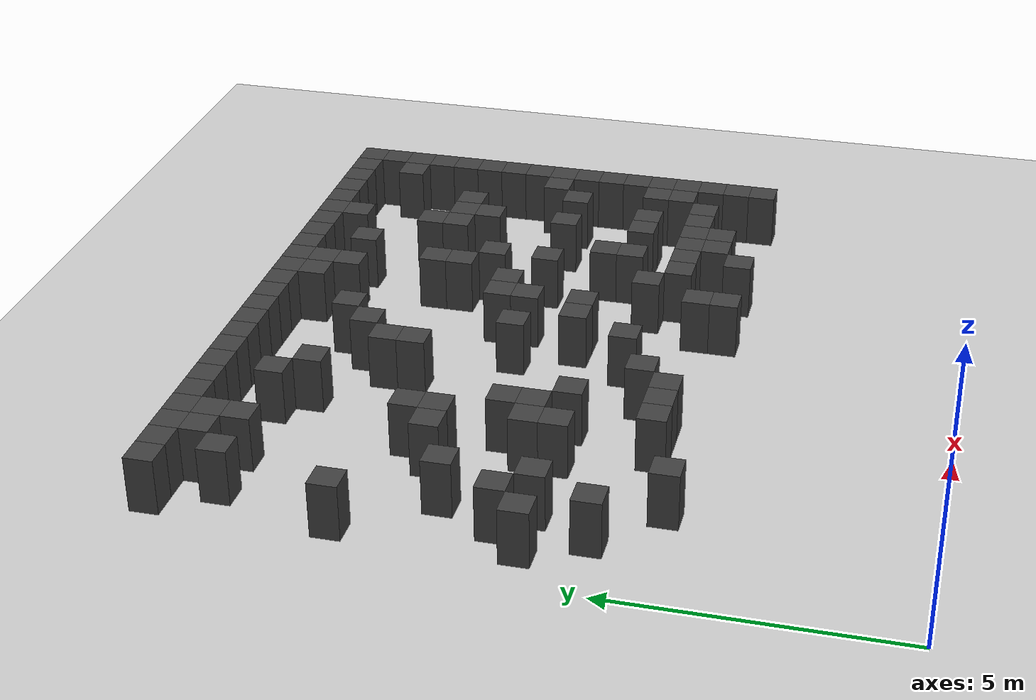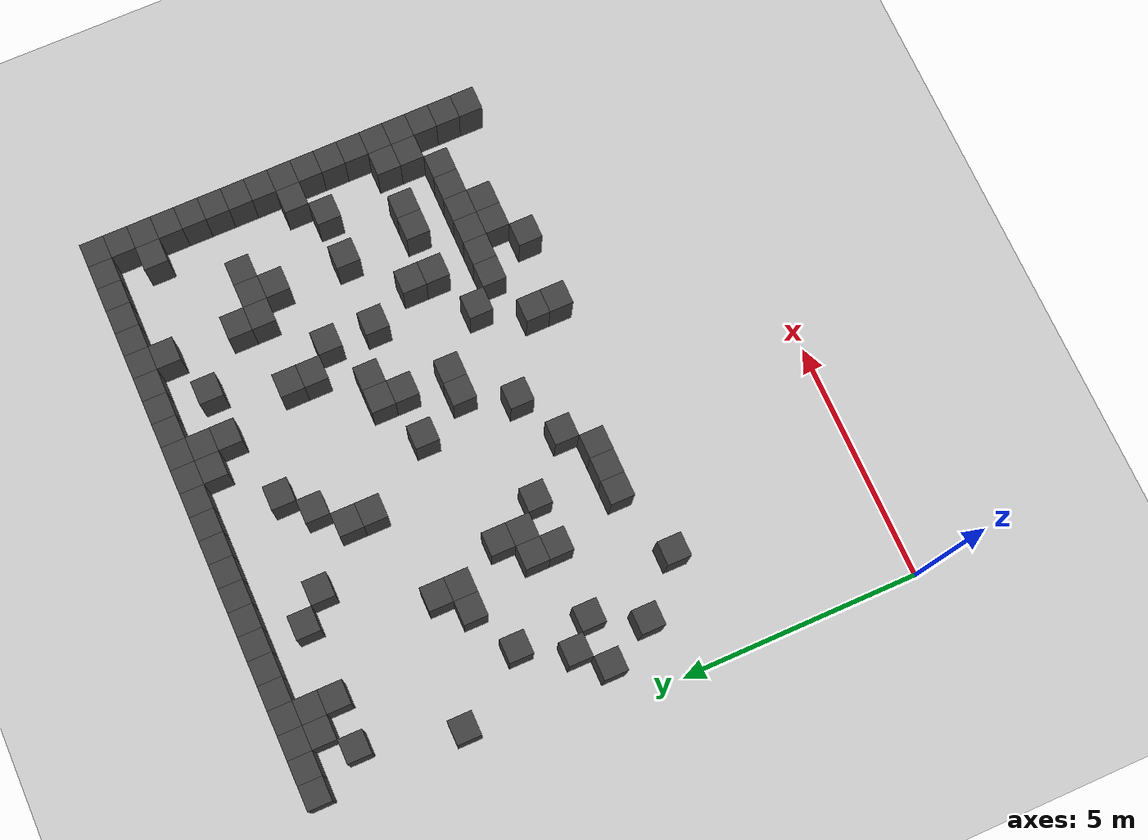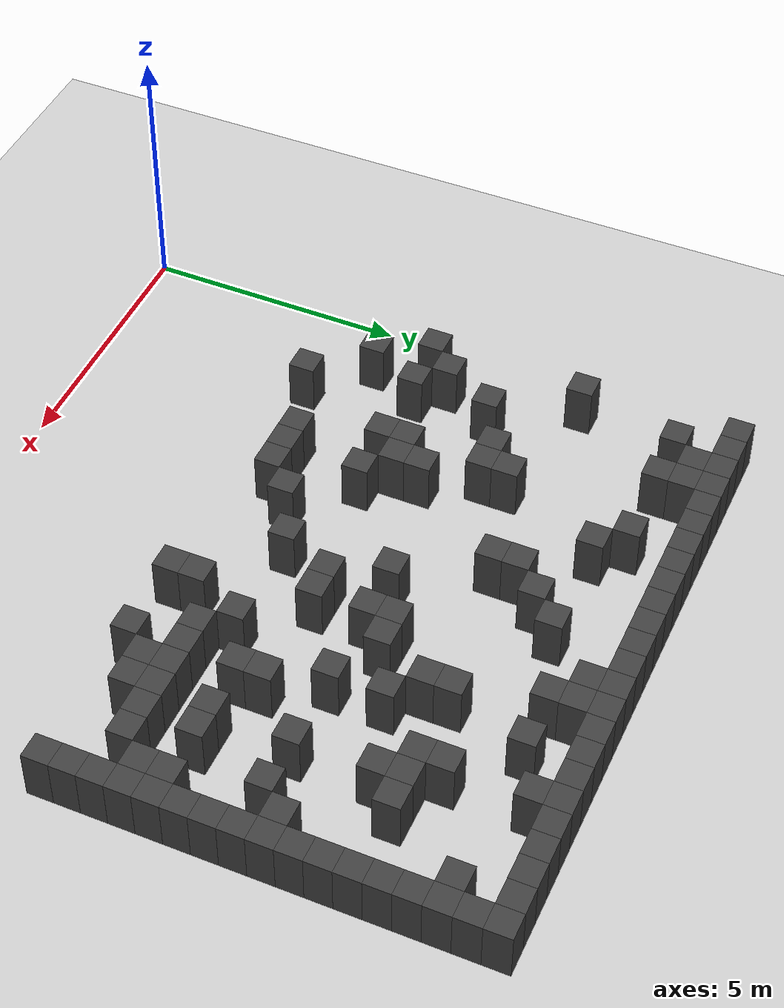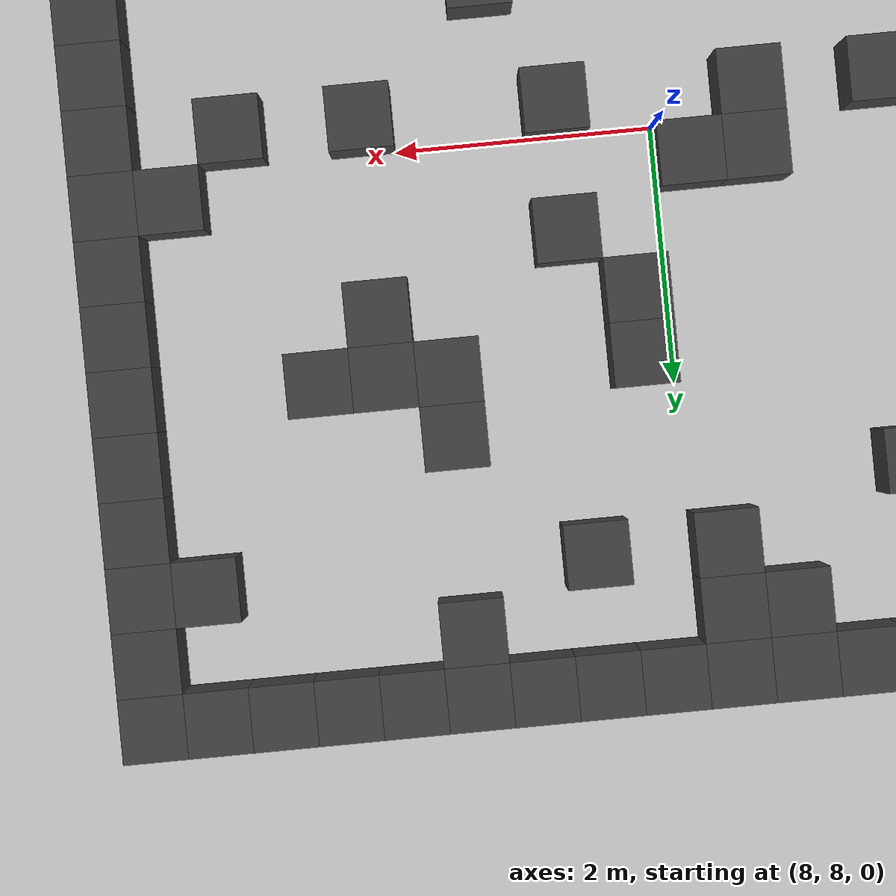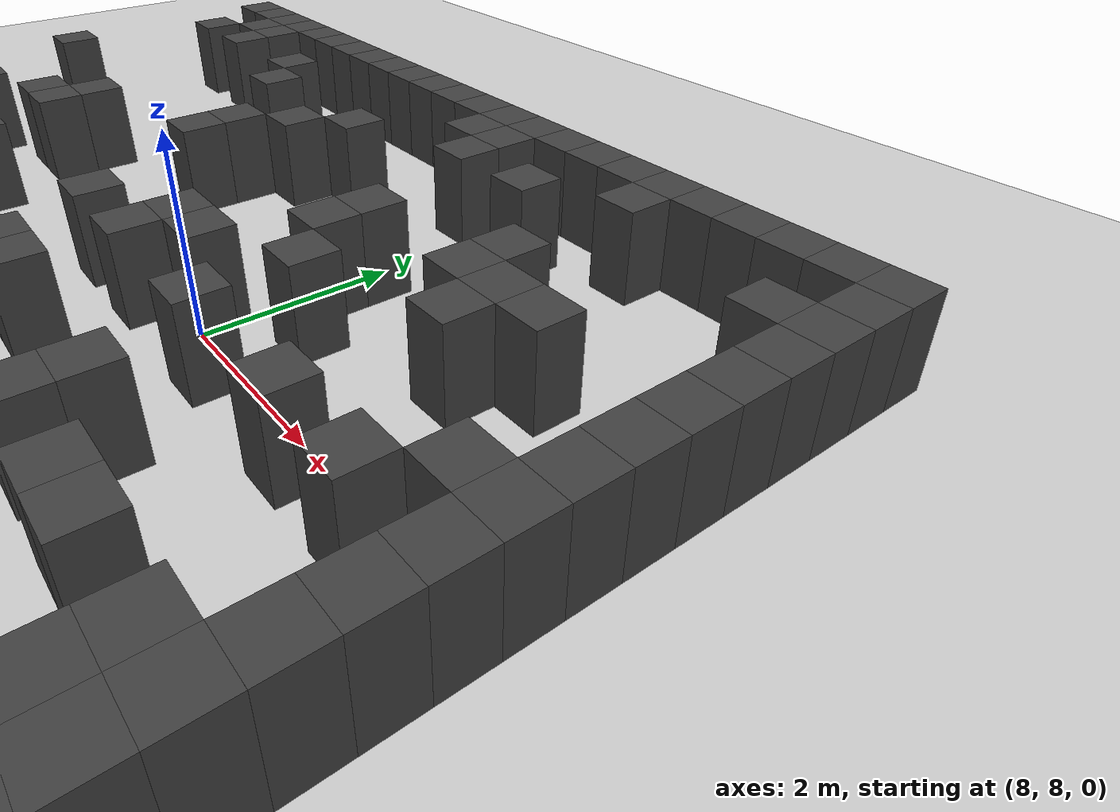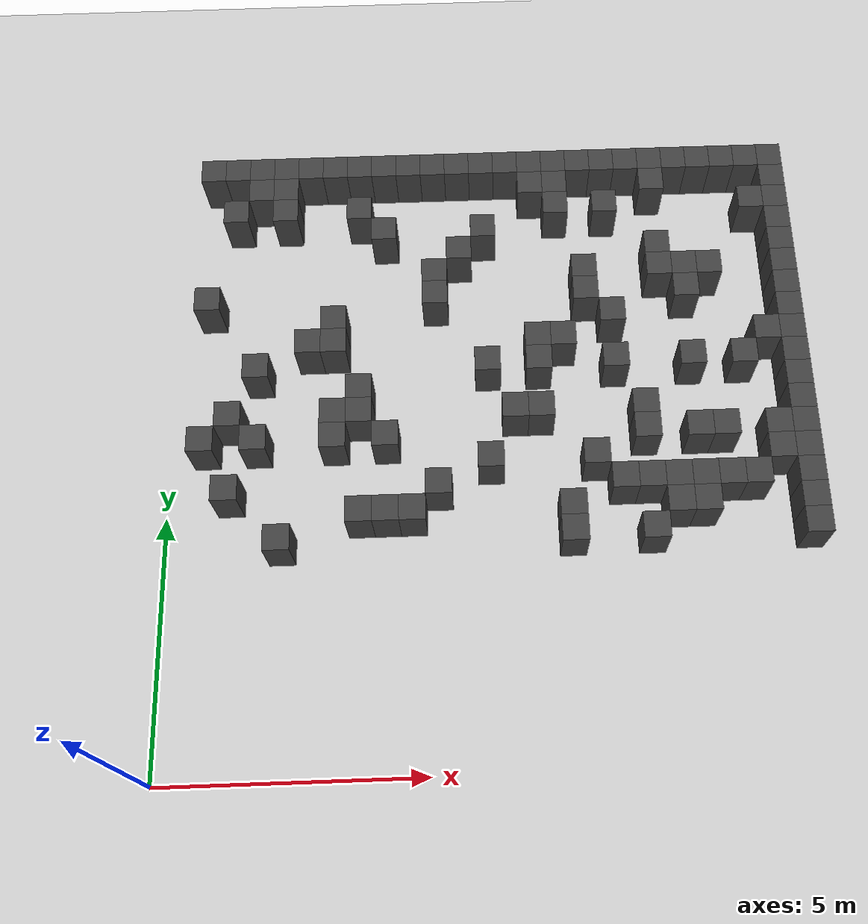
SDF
<sdf version="1.7">
 <world name="map_4225">
  <model name="ground_plane">
   <static>true</static>
   <link name="link">
    <collision name="collision">
     <geometry><plane><normal>0 0 1</normal><size>200 200</size></plane></geometry>
    </collision>
    <visual name="visual">
     <geometry><plane><normal>0 0 1</normal><size>200 200</size></plane></geometry>
     <material><ambient>0.8 0.8 0.8 1</ambient><diffuse>0.8 0.8 0.8 1</diffuse></material>
    </visual>
   </link>
  </model>
  <model name="maze_environment">
   <static>true</static>
   <link name="wall_26">
    <pose>0.750 12.250 0.500 0 0 0</pose>
    <collision name="col"><geometry><box><size>0.5 0.5 1.0</size></box></geometry></collision>
    <visual name="vis">
     <geometry><box><size>0.5 0.5 1.0</size></box></geometry>
     <material><ambient>0.15 0.15 0.15 1</ambient><diffuse>0.25 0.25 0.25 1</diffuse></material>
    </visual>
   </link>
   <link name="wall_27">
    <pose>1.250 12.250 0.500 0 0 0</pose>
    <collision name="col"><geometry><box><size>0.5 0.5 1.0</size></box></geometry></collision>
    <visual name="vis">
     <geometry><box><size>0.5 0.5 1.0</size></box></geometry>
     <material><ambient>0.15 0.15 0.15 1</ambient><diffuse>0.25 0.25 0.25 1</diffuse></material>
    </visual>
   </link>
   <link name="wall_28">
    <pose>1.750 12.250 0.500 0 0 0</pose>
    <collision name="col"><geometry><box><size>0.5 0.5 1.0</size></box></geometry></collision>
    <visual name="vis">
     <geometry><box><size>0.5 0.5 1.0</size></box></geometry>
     <material><ambient>0.15 0.15 0.15 1</ambient><diffuse>0.25 0.25 0.25 1</diffuse></material>
    </visual>
   </link>
   <link name="wall_29">
    <pose>2.250 12.250 0.500 0 0 0</pose>
    <collision name="col"><geometry><box><size>0.5 0.5 1.0</size></box></geometry></collision>
    <visual name="vis">
     <geometry><box><size>0.5 0.5 1.0</size></box></geometry>
     <material><ambient>0.15 0.15 0.15 1</ambient><diffuse>0.25 0.25 0.25 1</diffuse></material>
    </visual>
   </link>
   <link name="wall_30">
    <pose>2.750 12.250 0.500 0 0 0</pose>
    <collision name="col"><geometry><box><size>0.5 0.5 1.0</size></box></geometry></collision>
    <visual name="vis">
     <geometry><box><size>0.5 0.5 1.0</size></box></geometry>
     <material><ambient>0.15 0.15 0.15 1</ambient><diffuse>0.25 0.25 0.25 1</diffuse></material>
    </visual>
   </link>
   <link name="wall_31">
    <pose>3.250 12.250 0.500 0 0 0</pose>
    <collision name="col"><geometry><box><size>0.5 0.5 1.0</size></box></geometry></collision>
    <visual name="vis">
     <geometry><box><size>0.5 0.5 1.0</size></box></geometry>
     <material><ambient>0.15 0.15 0.15 1</ambient><diffuse>0.25 0.25 0.25 1</diffuse></material>
    </visual>
   </link>
   <link name="wall_32">
    <pose>3.750 12.250 0.500 0 0 0</pose>
    <collision name="col"><geometry><box><size>0.5 0.5 1.0</size></box></geometry></collision>
    <visual name="vis">
     <geometry><box><size>0.5 0.5 1.0</size></box></geometry>
     <material><ambient>0.15 0.15 0.15 1</ambient><diffuse>0.25 0.25 0.25 1</diffuse></material>
    </visual>
   </link>
   <link name="wall_33">
    <pose>4.250 12.250 0.500 0 0 0</pose>
    <collision name="col"><geometry><box><size>0.5 0.5 1.0</size></box></geometry></collision>
    <visual name="vis">
     <geometry><box><size>0.5 0.5 1.0</size></box></geometry>
     <material><ambient>0.15 0.15 0.15 1</ambient><diffuse>0.25 0.25 0.25 1</diffuse></material>
    </visual>
   </link>
   <link name="wall_34">
    <pose>4.750 12.250 0.500 0 0 0</pose>
    <collision name="col"><geometry><box><size>0.5 0.5 1.0</size></box></geometry></collision>
    <visual name="vis">
     <geometry><box><size>0.5 0.5 1.0</size></box></geometry>
     <material><ambient>0.15 0.15 0.15 1</ambient><diffuse>0.25 0.25 0.25 1</diffuse></material>
    </visual>
   </link>
   <link name="wall_35">
    <pose>5.250 12.250 0.500 0 0 0</pose>
    <collision name="col"><geometry><box><size>0.5 0.5 1.0</size></box></geometry></collision>
    <visual name="vis">
     <geometry><box><size>0.5 0.5 1.0</size></box></geometry>
     <material><ambient>0.15 0.15 0.15 1</ambient><diffuse>0.25 0.25 0.25 1</diffuse></material>
    </visual>
   </link>
   <link name="wall_36">
    <pose>5.750 12.250 0.500 0 0 0</pose>
    <collision name="col"><geometry><box><size>0.5 0.5 1.0</size></box></geometry></collision>
    <visual name="vis">
     <geometry><box><size>0.5 0.5 1.0</size></box></geometry>
     <material><ambient>0.15 0.15 0.15 1</ambient><diffuse>0.25 0.25 0.25 1</diffuse></material>
    </visual>
   </link>
   <link name="wall_37">
    <pose>6.250 12.250 0.500 0 0 0</pose>
    <collision name="col"><geometry><box><size>0.5 0.5 1.0</size></box></geometry></collision>
    <visual name="vis">
     <geometry><box><size>0.5 0.5 1.0</size></box></geometry>
     <material><ambient>0.15 0.15 0.15 1</ambient><diffuse>0.25 0.25 0.25 1</diffuse></material>
    </visual>
   </link>
   <link name="wall_38">
    <pose>6.750 12.250 0.500 0 0 0</pose>
    <collision name="col"><geometry><box><size>0.5 0.5 1.0</size></box></geometry></collision>
    <visual name="vis">
     <geometry><box><size>0.5 0.5 1.0</size></box></geometry>
     <material><ambient>0.15 0.15 0.15 1</ambient><diffuse>0.25 0.25 0.25 1</diffuse></material>
    </visual>
   </link>
   <link name="wall_39">
    <pose>7.250 12.250 0.500 0 0 0</pose>
    <collision name="col"><geometry><box><size>0.5 0.5 1.0</size></box></geometry></collision>
    <visual name="vis">
     <geometry><box><size>0.5 0.5 1.0</size></box></geometry>
     <material><ambient>0.15 0.15 0.15 1</ambient><diffuse>0.25 0.25 0.25 1</diffuse></material>
    </visual>
   </link>
   <link name="wall_40">
    <pose>7.750 12.250 0.500 0 0 0</pose>
    <collision name="col"><geometry><box><size>0.5 0.5 1.0</size></box></geometry></collision>
    <visual name="vis">
     <geometry><box><size>0.5 0.5 1.0</size></box></geometry>
     <material><ambient>0.15 0.15 0.15 1</ambient><diffuse>0.25 0.25 0.25 1</diffuse></material>
    </visual>
   </link>
   <link name="wall_41">
    <pose>8.250 12.250 0.500 0 0 0</pose>
    <collision name="col"><geometry><box><size>0.5 0.5 1.0</size></box></geometry></collision>
    <visual name="vis">
     <geometry><box><size>0.5 0.5 1.0</size></box></geometry>
     <material><ambient>0.15 0.15 0.15 1</ambient><diffuse>0.25 0.25 0.25 1</diffuse></material>
    </visual>
   </link>
   <link name="wall_42">
    <pose>8.750 12.250 0.500 0 0 0</pose>
    <collision name="col"><geometry><box><size>0.5 0.5 1.0</size></box></geometry></collision>
    <visual name="vis">
     <geometry><box><size>0.5 0.5 1.0</size></box></geometry>
     <material><ambient>0.15 0.15 0.15 1</ambient><diffuse>0.25 0.25 0.25 1</diffuse></material>
    </visual>
   </link>
   <link name="wall_43">
    <pose>9.250 12.250 0.500 0 0 0</pose>
    <collision name="col"><geometry><box><size>0.5 0.5 1.0</size></box></geometry></collision>
    <visual name="vis">
     <geometry><box><size>0.5 0.5 1.0</size></box></geometry>
     <material><ambient>0.15 0.15 0.15 1</ambient><diffuse>0.25 0.25 0.25 1</diffuse></material>
    </visual>
   </link>
   <link name="wall_44">
    <pose>9.750 12.250 0.500 0 0 0</pose>
    <collision name="col"><geometry><box><size>0.5 0.5 1.0</size></box></geometry></collision>
    <visual name="vis">
     <geometry><box><size>0.5 0.5 1.0</size></box></geometry>
     <material><ambient>0.15 0.15 0.15 1</ambient><diffuse>0.25 0.25 0.25 1</diffuse></material>
    </visual>
   </link>
   <link name="wall_45">
    <pose>10.250 12.250 0.500 0 0 0</pose>
    <collision name="col"><geometry><box><size>0.5 0.5 1.0</size></box></geometry></collision>
    <visual name="vis">
     <geometry><box><size>0.5 0.5 1.0</size></box></geometry>
     <material><ambient>0.15 0.15 0.15 1</ambient><diffuse>0.25 0.25 0.25 1</diffuse></material>
    </visual>
   </link>
   <link name="wall_46">
    <pose>10.750 12.250 0.500 0 0 0</pose>
    <collision name="col"><geometry><box><size>0.5 0.5 1.0</size></box></geometry></collision>
    <visual name="vis">
     <geometry><box><size>0.5 0.5 1.0</size></box></geometry>
     <material><ambient>0.15 0.15 0.15 1</ambient><diffuse>0.25 0.25 0.25 1</diffuse></material>
    </visual>
   </link>
   <link name="wall_47">
    <pose>11.250 12.250 0.500 0 0 0</pose>
    <collision name="col"><geometry><box><size>0.5 0.5 1.0</size></box></geometry></collision>
    <visual name="vis">
     <geometry><box><size>0.5 0.5 1.0</size></box></geometry>
     <material><ambient>0.15 0.15 0.15 1</ambient><diffuse>0.25 0.25 0.25 1</diffuse></material>
    </visual>
   </link>
   <link name="wall_48">
    <pose>11.750 12.250 0.500 0 0 0</pose>
    <collision name="col"><geometry><box><size>0.5 0.5 1.0</size></box></geometry></collision>
    <visual name="vis">
     <geometry><box><size>0.5 0.5 1.0</size></box></geometry>
     <material><ambient>0.15 0.15 0.15 1</ambient><diffuse>0.25 0.25 0.25 1</diffuse></material>
    </visual>
   </link>
   <link name="wall_49">
    <pose>12.250 12.250 0.500 0 0 0</pose>
    <collision name="col"><geometry><box><size>0.5 0.5 1.0</size></box></geometry></collision>
    <visual name="vis">
     <geometry><box><size>0.5 0.5 1.0</size></box></geometry>
     <material><ambient>0.15 0.15 0.15 1</ambient><diffuse>0.25 0.25 0.25 1</diffuse></material>
    </visual>
   </link>
   <link name="wall_59">
    <pose>1.750 11.750 0.500 0 0 0</pose>
    <collision name="col"><geometry><box><size>0.5 0.5 1.0</size></box></geometry></collision>
    <visual name="vis">
     <geometry><box><size>0.5 0.5 1.0</size></box></geometry>
     <material><ambient>0.15 0.15 0.15 1</ambient><diffuse>0.25 0.25 0.25 1</diffuse></material>
    </visual>
   </link>
   <link name="wall_60">
    <pose>2.250 11.750 0.500 0 0 0</pose>
    <collision name="col"><geometry><box><size>0.5 0.5 1.0</size></box></geometry></collision>
    <visual name="vis">
     <geometry><box><size>0.5 0.5 1.0</size></box></geometry>
     <material><ambient>0.15 0.15 0.15 1</ambient><diffuse>0.25 0.25 0.25 1</diffuse></material>
    </visual>
   </link>
   <link name="wall_61">
    <pose>7.250 11.750 0.500 0 0 0</pose>
    <collision name="col"><geometry><box><size>0.5 0.5 1.0</size></box></geometry></collision>
    <visual name="vis">
     <geometry><box><size>0.5 0.5 1.0</size></box></geometry>
     <material><ambient>0.15 0.15 0.15 1</ambient><diffuse>0.25 0.25 0.25 1</diffuse></material>
    </visual>
   </link>
   <link name="wall_62">
    <pose>7.750 11.750 0.500 0 0 0</pose>
    <collision name="col"><geometry><box><size>0.5 0.5 1.0</size></box></geometry></collision>
    <visual name="vis">
     <geometry><box><size>0.5 0.5 1.0</size></box></geometry>
     <material><ambient>0.15 0.15 0.15 1</ambient><diffuse>0.25 0.25 0.25 1</diffuse></material>
    </visual>
   </link>
   <link name="wall_63">
    <pose>9.750 11.750 0.500 0 0 0</pose>
    <collision name="col"><geometry><box><size>0.5 0.5 1.0</size></box></geometry></collision>
    <visual name="vis">
     <geometry><box><size>0.5 0.5 1.0</size></box></geometry>
     <material><ambient>0.15 0.15 0.15 1</ambient><diffuse>0.25 0.25 0.25 1</diffuse></material>
    </visual>
   </link>
   <link name="wall_64">
    <pose>12.250 11.750 0.500 0 0 0</pose>
    <collision name="col"><geometry><box><size>0.5 0.5 1.0</size></box></geometry></collision>
    <visual name="vis">
     <geometry><box><size>0.5 0.5 1.0</size></box></geometry>
     <material><ambient>0.15 0.15 0.15 1</ambient><diffuse>0.25 0.25 0.25 1</diffuse></material>
    </visual>
   </link>
   <link name="wall_75">
    <pose>1.250 11.250 0.500 0 0 0</pose>
    <collision name="col"><geometry><box><size>0.5 0.5 1.0</size></box></geometry></collision>
    <visual name="vis">
     <geometry><box><size>0.5 0.5 1.0</size></box></geometry>
     <material><ambient>0.15 0.15 0.15 1</ambient><diffuse>0.25 0.25 0.25 1</diffuse></material>
    </visual>
   </link>
   <link name="wall_76">
    <pose>2.250 11.250 0.500 0 0 0</pose>
    <collision name="col"><geometry><box><size>0.5 0.5 1.0</size></box></geometry></collision>
    <visual name="vis">
     <geometry><box><size>0.5 0.5 1.0</size></box></geometry>
     <material><ambient>0.15 0.15 0.15 1</ambient><diffuse>0.25 0.25 0.25 1</diffuse></material>
    </visual>
   </link>
   <link name="wall_77">
    <pose>3.750 11.250 0.500 0 0 0</pose>
    <collision name="col"><geometry><box><size>0.5 0.5 1.0</size></box></geometry></collision>
    <visual name="vis">
     <geometry><box><size>0.5 0.5 1.0</size></box></geometry>
     <material><ambient>0.15 0.15 0.15 1</ambient><diffuse>0.25 0.25 0.25 1</diffuse></material>
    </visual>
   </link>
   <link name="wall_78">
    <pose>7.750 11.250 0.500 0 0 0</pose>
    <collision name="col"><geometry><box><size>0.5 0.5 1.0</size></box></geometry></collision>
    <visual name="vis">
     <geometry><box><size>0.5 0.5 1.0</size></box></geometry>
     <material><ambient>0.15 0.15 0.15 1</ambient><diffuse>0.25 0.25 0.25 1</diffuse></material>
    </visual>
   </link>
   <link name="wall_79">
    <pose>8.750 11.250 0.500 0 0 0</pose>
    <collision name="col"><geometry><box><size>0.5 0.5 1.0</size></box></geometry></collision>
    <visual name="vis">
     <geometry><box><size>0.5 0.5 1.0</size></box></geometry>
     <material><ambient>0.15 0.15 0.15 1</ambient><diffuse>0.25 0.25 0.25 1</diffuse></material>
    </visual>
   </link>
   <link name="wall_80">
    <pose>11.750 11.250 0.500 0 0 0</pose>
    <collision name="col"><geometry><box><size>0.5 0.5 1.0</size></box></geometry></collision>
    <visual name="vis">
     <geometry><box><size>0.5 0.5 1.0</size></box></geometry>
     <material><ambient>0.15 0.15 0.15 1</ambient><diffuse>0.25 0.25 0.25 1</diffuse></material>
    </visual>
   </link>
   <link name="wall_81">
    <pose>12.250 11.250 0.500 0 0 0</pose>
    <collision name="col"><geometry><box><size>0.5 0.5 1.0</size></box></geometry></collision>
    <visual name="vis">
     <geometry><box><size>0.5 0.5 1.0</size></box></geometry>
     <material><ambient>0.15 0.15 0.15 1</ambient><diffuse>0.25 0.25 0.25 1</diffuse></material>
    </visual>
   </link>
   <link name="wall_88">
    <pose>4.250 10.750 0.500 0 0 0</pose>
    <collision name="col"><geometry><box><size>0.5 0.5 1.0</size></box></geometry></collision>
    <visual name="vis">
     <geometry><box><size>0.5 0.5 1.0</size></box></geometry>
     <material><ambient>0.15 0.15 0.15 1</ambient><diffuse>0.25 0.25 0.25 1</diffuse></material>
    </visual>
   </link>
   <link name="wall_89">
    <pose>6.250 10.750 0.500 0 0 0</pose>
    <collision name="col"><geometry><box><size>0.5 0.5 1.0</size></box></geometry></collision>
    <visual name="vis">
     <geometry><box><size>0.5 0.5 1.0</size></box></geometry>
     <material><ambient>0.15 0.15 0.15 1</ambient><diffuse>0.25 0.25 0.25 1</diffuse></material>
    </visual>
   </link>
   <link name="wall_90">
    <pose>12.250 10.750 0.500 0 0 0</pose>
    <collision name="col"><geometry><box><size>0.5 0.5 1.0</size></box></geometry></collision>
    <visual name="vis">
     <geometry><box><size>0.5 0.5 1.0</size></box></geometry>
     <material><ambient>0.15 0.15 0.15 1</ambient><diffuse>0.25 0.25 0.25 1</diffuse></material>
    </visual>
   </link>
   <link name="wall_98">
    <pose>5.750 10.250 0.500 0 0 0</pose>
    <collision name="col"><geometry><box><size>0.5 0.5 1.0</size></box></geometry></collision>
    <visual name="vis">
     <geometry><box><size>0.5 0.5 1.0</size></box></geometry>
     <material><ambient>0.15 0.15 0.15 1</ambient><diffuse>0.25 0.25 0.25 1</diffuse></material>
    </visual>
   </link>
   <link name="wall_99">
    <pose>9.750 10.250 0.500 0 0 0</pose>
    <collision name="col"><geometry><box><size>0.5 0.5 1.0</size></box></geometry></collision>
    <visual name="vis">
     <geometry><box><size>0.5 0.5 1.0</size></box></geometry>
     <material><ambient>0.15 0.15 0.15 1</ambient><diffuse>0.25 0.25 0.25 1</diffuse></material>
    </visual>
   </link>
   <link name="wall_100">
    <pose>12.250 10.250 0.500 0 0 0</pose>
    <collision name="col"><geometry><box><size>0.5 0.5 1.0</size></box></geometry></collision>
    <visual name="vis">
     <geometry><box><size>0.5 0.5 1.0</size></box></geometry>
     <material><ambient>0.15 0.15 0.15 1</ambient><diffuse>0.25 0.25 0.25 1</diffuse></material>
    </visual>
   </link>
   <link name="wall_107">
    <pose>5.250 9.750 0.500 0 0 0</pose>
    <collision name="col"><geometry><box><size>0.5 0.5 1.0</size></box></geometry></collision>
    <visual name="vis">
     <geometry><box><size>0.5 0.5 1.0</size></box></geometry>
     <material><ambient>0.15 0.15 0.15 1</ambient><diffuse>0.25 0.25 0.25 1</diffuse></material>
    </visual>
   </link>
   <link name="wall_108">
    <pose>8.250 9.750 0.500 0 0 0</pose>
    <collision name="col"><geometry><box><size>0.5 0.5 1.0</size></box></geometry></collision>
    <visual name="vis">
     <geometry><box><size>0.5 0.5 1.0</size></box></geometry>
     <material><ambient>0.15 0.15 0.15 1</ambient><diffuse>0.25 0.25 0.25 1</diffuse></material>
    </visual>
   </link>
   <link name="wall_109">
    <pose>9.750 9.750 0.500 0 0 0</pose>
    <collision name="col"><geometry><box><size>0.5 0.5 1.0</size></box></geometry></collision>
    <visual name="vis">
     <geometry><box><size>0.5 0.5 1.0</size></box></geometry>
     <material><ambient>0.15 0.15 0.15 1</ambient><diffuse>0.25 0.25 0.25 1</diffuse></material>
    </visual>
   </link>
   <link name="wall_110">
    <pose>10.250 9.750 0.500 0 0 0</pose>
    <collision name="col"><geometry><box><size>0.5 0.5 1.0</size></box></geometry></collision>
    <visual name="vis">
     <geometry><box><size>0.5 0.5 1.0</size></box></geometry>
     <material><ambient>0.15 0.15 0.15 1</ambient><diffuse>0.25 0.25 0.25 1</diffuse></material>
    </visual>
   </link>
   <link name="wall_111">
    <pose>10.750 9.750 0.500 0 0 0</pose>
    <collision name="col"><geometry><box><size>0.5 0.5 1.0</size></box></geometry></collision>
    <visual name="vis">
     <geometry><box><size>0.5 0.5 1.0</size></box></geometry>
     <material><ambient>0.15 0.15 0.15 1</ambient><diffuse>0.25 0.25 0.25 1</diffuse></material>
    </visual>
   </link>
   <link name="wall_112">
    <pose>12.250 9.750 0.500 0 0 0</pose>
    <collision name="col"><geometry><box><size>0.5 0.5 1.0</size></box></geometry></collision>
    <visual name="vis">
     <geometry><box><size>0.5 0.5 1.0</size></box></geometry>
     <material><ambient>0.15 0.15 0.15 1</ambient><diffuse>0.25 0.25 0.25 1</diffuse></material>
    </visual>
   </link>
   <link name="wall_117">
    <pose>0.750 9.250 0.500 0 0 0</pose>
    <collision name="col"><geometry><box><size>0.5 0.5 1.0</size></box></geometry></collision>
    <visual name="vis">
     <geometry><box><size>0.5 0.5 1.0</size></box></geometry>
     <material><ambient>0.15 0.15 0.15 1</ambient><diffuse>0.25 0.25 0.25 1</diffuse></material>
    </visual>
   </link>
   <link name="wall_118">
    <pose>5.250 9.250 0.500 0 0 0</pose>
    <collision name="col"><geometry><box><size>0.5 0.5 1.0</size></box></geometry></collision>
    <visual name="vis">
     <geometry><box><size>0.5 0.5 1.0</size></box></geometry>
     <material><ambient>0.15 0.15 0.15 1</ambient><diffuse>0.25 0.25 0.25 1</diffuse></material>
    </visual>
   </link>
   <link name="wall_119">
    <pose>8.250 9.250 0.500 0 0 0</pose>
    <collision name="col"><geometry><box><size>0.5 0.5 1.0</size></box></geometry></collision>
    <visual name="vis">
     <geometry><box><size>0.5 0.5 1.0</size></box></geometry>
     <material><ambient>0.15 0.15 0.15 1</ambient><diffuse>0.25 0.25 0.25 1</diffuse></material>
    </visual>
   </link>
   <link name="wall_120">
    <pose>10.250 9.250 0.500 0 0 0</pose>
    <collision name="col"><geometry><box><size>0.5 0.5 1.0</size></box></geometry></collision>
    <visual name="vis">
     <geometry><box><size>0.5 0.5 1.0</size></box></geometry>
     <material><ambient>0.15 0.15 0.15 1</ambient><diffuse>0.25 0.25 0.25 1</diffuse></material>
    </visual>
   </link>
   <link name="wall_121">
    <pose>12.250 9.250 0.500 0 0 0</pose>
    <collision name="col"><geometry><box><size>0.5 0.5 1.0</size></box></geometry></collision>
    <visual name="vis">
     <geometry><box><size>0.5 0.5 1.0</size></box></geometry>
     <material><ambient>0.15 0.15 0.15 1</ambient><diffuse>0.25 0.25 0.25 1</diffuse></material>
    </visual>
   </link>
   <link name="wall_125">
    <pose>3.250 8.750 0.500 0 0 0</pose>
    <collision name="col"><geometry><box><size>0.5 0.5 1.0</size></box></geometry></collision>
    <visual name="vis">
     <geometry><box><size>0.5 0.5 1.0</size></box></geometry>
     <material><ambient>0.15 0.15 0.15 1</ambient><diffuse>0.25 0.25 0.25 1</diffuse></material>
    </visual>
   </link>
   <link name="wall_126">
    <pose>8.750 8.750 0.500 0 0 0</pose>
    <collision name="col"><geometry><box><size>0.5 0.5 1.0</size></box></geometry></collision>
    <visual name="vis">
     <geometry><box><size>0.5 0.5 1.0</size></box></geometry>
     <material><ambient>0.15 0.15 0.15 1</ambient><diffuse>0.25 0.25 0.25 1</diffuse></material>
    </visual>
   </link>
   <link name="wall_127">
    <pose>12.250 8.750 0.500 0 0 0</pose>
    <collision name="col"><geometry><box><size>0.5 0.5 1.0</size></box></geometry></collision>
    <visual name="vis">
     <geometry><box><size>0.5 0.5 1.0</size></box></geometry>
     <material><ambient>0.15 0.15 0.15 1</ambient><diffuse>0.25 0.25 0.25 1</diffuse></material>
    </visual>
   </link>
   <link name="wall_134">
    <pose>2.750 8.250 0.500 0 0 0</pose>
    <collision name="col"><geometry><box><size>0.5 0.5 1.0</size></box></geometry></collision>
    <visual name="vis">
     <geometry><box><size>0.5 0.5 1.0</size></box></geometry>
     <material><ambient>0.15 0.15 0.15 1</ambient><diffuse>0.25 0.25 0.25 1</diffuse></material>
    </visual>
   </link>
   <link name="wall_135">
    <pose>3.250 8.250 0.500 0 0 0</pose>
    <collision name="col"><geometry><box><size>0.5 0.5 1.0</size></box></geometry></collision>
    <visual name="vis">
     <geometry><box><size>0.5 0.5 1.0</size></box></geometry>
     <material><ambient>0.15 0.15 0.15 1</ambient><diffuse>0.25 0.25 0.25 1</diffuse></material>
    </visual>
   </link>
   <link name="wall_136">
    <pose>7.250 8.250 0.500 0 0 0</pose>
    <collision name="col"><geometry><box><size>0.5 0.5 1.0</size></box></geometry></collision>
    <visual name="vis">
     <geometry><box><size>0.5 0.5 1.0</size></box></geometry>
     <material><ambient>0.15 0.15 0.15 1</ambient><diffuse>0.25 0.25 0.25 1</diffuse></material>
    </visual>
   </link>
   <link name="wall_137">
    <pose>7.750 8.250 0.500 0 0 0</pose>
    <collision name="col"><geometry><box><size>0.5 0.5 1.0</size></box></geometry></collision>
    <visual name="vis">
     <geometry><box><size>0.5 0.5 1.0</size></box></geometry>
     <material><ambient>0.15 0.15 0.15 1</ambient><diffuse>0.25 0.25 0.25 1</diffuse></material>
    </visual>
   </link>
   <link name="wall_138">
    <pose>11.750 8.250 0.500 0 0 0</pose>
    <collision name="col"><geometry><box><size>0.5 0.5 1.0</size></box></geometry></collision>
    <visual name="vis">
     <geometry><box><size>0.5 0.5 1.0</size></box></geometry>
     <material><ambient>0.15 0.15 0.15 1</ambient><diffuse>0.25 0.25 0.25 1</diffuse></material>
    </visual>
   </link>
   <link name="wall_139">
    <pose>12.250 8.250 0.500 0 0 0</pose>
    <collision name="col"><geometry><box><size>0.5 0.5 1.0</size></box></geometry></collision>
    <visual name="vis">
     <geometry><box><size>0.5 0.5 1.0</size></box></geometry>
     <material><ambient>0.15 0.15 0.15 1</ambient><diffuse>0.25 0.25 0.25 1</diffuse></material>
    </visual>
   </link>
   <link name="wall_147">
    <pose>1.750 7.750 0.500 0 0 0</pose>
    <collision name="col"><geometry><box><size>0.5 0.5 1.0</size></box></geometry></collision>
    <visual name="vis">
     <geometry><box><size>0.5 0.5 1.0</size></box></geometry>
     <material><ambient>0.15 0.15 0.15 1</ambient><diffuse>0.25 0.25 0.25 1</diffuse></material>
    </visual>
   </link>
   <link name="wall_148">
    <pose>6.250 7.750 0.500 0 0 0</pose>
    <collision name="col"><geometry><box><size>0.5 0.5 1.0</size></box></geometry></collision>
    <visual name="vis">
     <geometry><box><size>0.5 0.5 1.0</size></box></geometry>
     <material><ambient>0.15 0.15 0.15 1</ambient><diffuse>0.25 0.25 0.25 1</diffuse></material>
    </visual>
   </link>
   <link name="wall_149">
    <pose>7.250 7.750 0.500 0 0 0</pose>
    <collision name="col"><geometry><box><size>0.5 0.5 1.0</size></box></geometry></collision>
    <visual name="vis">
     <geometry><box><size>0.5 0.5 1.0</size></box></geometry>
     <material><ambient>0.15 0.15 0.15 1</ambient><diffuse>0.25 0.25 0.25 1</diffuse></material>
    </visual>
   </link>
   <link name="wall_150">
    <pose>8.750 7.750 0.500 0 0 0</pose>
    <collision name="col"><geometry><box><size>0.5 0.5 1.0</size></box></geometry></collision>
    <visual name="vis">
     <geometry><box><size>0.5 0.5 1.0</size></box></geometry>
     <material><ambient>0.15 0.15 0.15 1</ambient><diffuse>0.25 0.25 0.25 1</diffuse></material>
    </visual>
   </link>
   <link name="wall_151">
    <pose>10.250 7.750 0.500 0 0 0</pose>
    <collision name="col"><geometry><box><size>0.5 0.5 1.0</size></box></geometry></collision>
    <visual name="vis">
     <geometry><box><size>0.5 0.5 1.0</size></box></geometry>
     <material><ambient>0.15 0.15 0.15 1</ambient><diffuse>0.25 0.25 0.25 1</diffuse></material>
    </visual>
   </link>
   <link name="wall_152">
    <pose>11.250 7.750 0.500 0 0 0</pose>
    <collision name="col"><geometry><box><size>0.5 0.5 1.0</size></box></geometry></collision>
    <visual name="vis">
     <geometry><box><size>0.5 0.5 1.0</size></box></geometry>
     <material><ambient>0.15 0.15 0.15 1</ambient><diffuse>0.25 0.25 0.25 1</diffuse></material>
    </visual>
   </link>
   <link name="wall_153">
    <pose>12.250 7.750 0.500 0 0 0</pose>
    <collision name="col"><geometry><box><size>0.5 0.5 1.0</size></box></geometry></collision>
    <visual name="vis">
     <geometry><box><size>0.5 0.5 1.0</size></box></geometry>
     <material><ambient>0.15 0.15 0.15 1</ambient><diffuse>0.25 0.25 0.25 1</diffuse></material>
    </visual>
   </link>
   <link name="wall_158">
    <pose>3.750 7.250 0.500 0 0 0</pose>
    <collision name="col"><geometry><box><size>0.5 0.5 1.0</size></box></geometry></collision>
    <visual name="vis">
     <geometry><box><size>0.5 0.5 1.0</size></box></geometry>
     <material><ambient>0.15 0.15 0.15 1</ambient><diffuse>0.25 0.25 0.25 1</diffuse></material>
    </visual>
   </link>
   <link name="wall_159">
    <pose>12.250 7.250 0.500 0 0 0</pose>
    <collision name="col"><geometry><box><size>0.5 0.5 1.0</size></box></geometry></collision>
    <visual name="vis">
     <geometry><box><size>0.5 0.5 1.0</size></box></geometry>
     <material><ambient>0.15 0.15 0.15 1</ambient><diffuse>0.25 0.25 0.25 1</diffuse></material>
    </visual>
   </link>
   <link name="wall_168">
    <pose>1.250 6.750 0.500 0 0 0</pose>
    <collision name="col"><geometry><box><size>0.5 0.5 1.0</size></box></geometry></collision>
    <visual name="vis">
     <geometry><box><size>0.5 0.5 1.0</size></box></geometry>
     <material><ambient>0.15 0.15 0.15 1</ambient><diffuse>0.25 0.25 0.25 1</diffuse></material>
    </visual>
   </link>
   <link name="wall_169">
    <pose>3.250 6.750 0.500 0 0 0</pose>
    <collision name="col"><geometry><box><size>0.5 0.5 1.0</size></box></geometry></collision>
    <visual name="vis">
     <geometry><box><size>0.5 0.5 1.0</size></box></geometry>
     <material><ambient>0.15 0.15 0.15 1</ambient><diffuse>0.25 0.25 0.25 1</diffuse></material>
    </visual>
   </link>
   <link name="wall_170">
    <pose>3.750 6.750 0.500 0 0 0</pose>
    <collision name="col"><geometry><box><size>0.5 0.5 1.0</size></box></geometry></collision>
    <visual name="vis">
     <geometry><box><size>0.5 0.5 1.0</size></box></geometry>
     <material><ambient>0.15 0.15 0.15 1</ambient><diffuse>0.25 0.25 0.25 1</diffuse></material>
    </visual>
   </link>
   <link name="wall_171">
    <pose>6.750 6.750 0.500 0 0 0</pose>
    <collision name="col"><geometry><box><size>0.5 0.5 1.0</size></box></geometry></collision>
    <visual name="vis">
     <geometry><box><size>0.5 0.5 1.0</size></box></geometry>
     <material><ambient>0.15 0.15 0.15 1</ambient><diffuse>0.25 0.25 0.25 1</diffuse></material>
    </visual>
   </link>
   <link name="wall_172">
    <pose>7.250 6.750 0.500 0 0 0</pose>
    <collision name="col"><geometry><box><size>0.5 0.5 1.0</size></box></geometry></collision>
    <visual name="vis">
     <geometry><box><size>0.5 0.5 1.0</size></box></geometry>
     <material><ambient>0.15 0.15 0.15 1</ambient><diffuse>0.25 0.25 0.25 1</diffuse></material>
    </visual>
   </link>
   <link name="wall_173">
    <pose>9.250 6.750 0.500 0 0 0</pose>
    <collision name="col"><geometry><box><size>0.5 0.5 1.0</size></box></geometry></collision>
    <visual name="vis">
     <geometry><box><size>0.5 0.5 1.0</size></box></geometry>
     <material><ambient>0.15 0.15 0.15 1</ambient><diffuse>0.25 0.25 0.25 1</diffuse></material>
    </visual>
   </link>
   <link name="wall_174">
    <pose>12.250 6.750 0.500 0 0 0</pose>
    <collision name="col"><geometry><box><size>0.5 0.5 1.0</size></box></geometry></collision>
    <visual name="vis">
     <geometry><box><size>0.5 0.5 1.0</size></box></geometry>
     <material><ambient>0.15 0.15 0.15 1</ambient><diffuse>0.25 0.25 0.25 1</diffuse></material>
    </visual>
   </link>
   <link name="wall_180">
    <pose>0.750 6.250 0.500 0 0 0</pose>
    <collision name="col"><geometry><box><size>0.5 0.5 1.0</size></box></geometry></collision>
    <visual name="vis">
     <geometry><box><size>0.5 0.5 1.0</size></box></geometry>
     <material><ambient>0.15 0.15 0.15 1</ambient><diffuse>0.25 0.25 0.25 1</diffuse></material>
    </visual>
   </link>
   <link name="wall_181">
    <pose>1.750 6.250 0.500 0 0 0</pose>
    <collision name="col"><geometry><box><size>0.5 0.5 1.0</size></box></geometry></collision>
    <visual name="vis">
     <geometry><box><size>0.5 0.5 1.0</size></box></geometry>
     <material><ambient>0.15 0.15 0.15 1</ambient><diffuse>0.25 0.25 0.25 1</diffuse></material>
    </visual>
   </link>
   <link name="wall_182">
    <pose>3.250 6.250 0.500 0 0 0</pose>
    <collision name="col"><geometry><box><size>0.5 0.5 1.0</size></box></geometry></collision>
    <visual name="vis">
     <geometry><box><size>0.5 0.5 1.0</size></box></geometry>
     <material><ambient>0.15 0.15 0.15 1</ambient><diffuse>0.25 0.25 0.25 1</diffuse></material>
    </visual>
   </link>
   <link name="wall_183">
    <pose>4.250 6.250 0.500 0 0 0</pose>
    <collision name="col"><geometry><box><size>0.5 0.5 1.0</size></box></geometry></collision>
    <visual name="vis">
     <geometry><box><size>0.5 0.5 1.0</size></box></geometry>
     <material><ambient>0.15 0.15 0.15 1</ambient><diffuse>0.25 0.25 0.25 1</diffuse></material>
    </visual>
   </link>
   <link name="wall_184">
    <pose>9.250 6.250 0.500 0 0 0</pose>
    <collision name="col"><geometry><box><size>0.5 0.5 1.0</size></box></geometry></collision>
    <visual name="vis">
     <geometry><box><size>0.5 0.5 1.0</size></box></geometry>
     <material><ambient>0.15 0.15 0.15 1</ambient><diffuse>0.25 0.25 0.25 1</diffuse></material>
    </visual>
   </link>
   <link name="wall_185">
    <pose>10.250 6.250 0.500 0 0 0</pose>
    <collision name="col"><geometry><box><size>0.5 0.5 1.0</size></box></geometry></collision>
    <visual name="vis">
     <geometry><box><size>0.5 0.5 1.0</size></box></geometry>
     <material><ambient>0.15 0.15 0.15 1</ambient><diffuse>0.25 0.25 0.25 1</diffuse></material>
    </visual>
   </link>
   <link name="wall_186">
    <pose>10.750 6.250 0.500 0 0 0</pose>
    <collision name="col"><geometry><box><size>0.5 0.5 1.0</size></box></geometry></collision>
    <visual name="vis">
     <geometry><box><size>0.5 0.5 1.0</size></box></geometry>
     <material><ambient>0.15 0.15 0.15 1</ambient><diffuse>0.25 0.25 0.25 1</diffuse></material>
    </visual>
   </link>
   <link name="wall_187">
    <pose>11.750 6.250 0.500 0 0 0</pose>
    <collision name="col"><geometry><box><size>0.5 0.5 1.0</size></box></geometry></collision>
    <visual name="vis">
     <geometry><box><size>0.5 0.5 1.0</size></box></geometry>
     <material><ambient>0.15 0.15 0.15 1</ambient><diffuse>0.25 0.25 0.25 1</diffuse></material>
    </visual>
   </link>
   <link name="wall_188">
    <pose>12.250 6.250 0.500 0 0 0</pose>
    <collision name="col"><geometry><box><size>0.5 0.5 1.0</size></box></geometry></collision>
    <visual name="vis">
     <geometry><box><size>0.5 0.5 1.0</size></box></geometry>
     <material><ambient>0.15 0.15 0.15 1</ambient><diffuse>0.25 0.25 0.25 1</diffuse></material>
    </visual>
   </link>
   <link name="wall_196">
    <pose>6.250 5.750 0.500 0 0 0</pose>
    <collision name="col"><geometry><box><size>0.5 0.5 1.0</size></box></geometry></collision>
    <visual name="vis">
     <geometry><box><size>0.5 0.5 1.0</size></box></geometry>
     <material><ambient>0.15 0.15 0.15 1</ambient><diffuse>0.25 0.25 0.25 1</diffuse></material>
    </visual>
   </link>
   <link name="wall_197">
    <pose>8.250 5.750 0.500 0 0 0</pose>
    <collision name="col"><geometry><box><size>0.5 0.5 1.0</size></box></geometry></collision>
    <visual name="vis">
     <geometry><box><size>0.5 0.5 1.0</size></box></geometry>
     <material><ambient>0.15 0.15 0.15 1</ambient><diffuse>0.25 0.25 0.25 1</diffuse></material>
    </visual>
   </link>
   <link name="wall_198">
    <pose>11.750 5.750 0.500 0 0 0</pose>
    <collision name="col"><geometry><box><size>0.5 0.5 1.0</size></box></geometry></collision>
    <visual name="vis">
     <geometry><box><size>0.5 0.5 1.0</size></box></geometry>
     <material><ambient>0.15 0.15 0.15 1</ambient><diffuse>0.25 0.25 0.25 1</diffuse></material>
    </visual>
   </link>
   <link name="wall_199">
    <pose>12.250 5.750 0.500 0 0 0</pose>
    <collision name="col"><geometry><box><size>0.5 0.5 1.0</size></box></geometry></collision>
    <visual name="vis">
     <geometry><box><size>0.5 0.5 1.0</size></box></geometry>
     <material><ambient>0.15 0.15 0.15 1</ambient><diffuse>0.25 0.25 0.25 1</diffuse></material>
    </visual>
   </link>
   <link name="wall_206">
    <pose>1.250 5.250 0.500 0 0 0</pose>
    <collision name="col"><geometry><box><size>0.5 0.5 1.0</size></box></geometry></collision>
    <visual name="vis">
     <geometry><box><size>0.5 0.5 1.0</size></box></geometry>
     <material><ambient>0.15 0.15 0.15 1</ambient><diffuse>0.25 0.25 0.25 1</diffuse></material>
    </visual>
   </link>
   <link name="wall_207">
    <pose>5.250 5.250 0.500 0 0 0</pose>
    <collision name="col"><geometry><box><size>0.5 0.5 1.0</size></box></geometry></collision>
    <visual name="vis">
     <geometry><box><size>0.5 0.5 1.0</size></box></geometry>
     <material><ambient>0.15 0.15 0.15 1</ambient><diffuse>0.25 0.25 0.25 1</diffuse></material>
    </visual>
   </link>
   <link name="wall_208">
    <pose>8.750 5.250 0.500 0 0 0</pose>
    <collision name="col"><geometry><box><size>0.5 0.5 1.0</size></box></geometry></collision>
    <visual name="vis">
     <geometry><box><size>0.5 0.5 1.0</size></box></geometry>
     <material><ambient>0.15 0.15 0.15 1</ambient><diffuse>0.25 0.25 0.25 1</diffuse></material>
    </visual>
   </link>
   <link name="wall_209">
    <pose>9.250 5.250 0.500 0 0 0</pose>
    <collision name="col"><geometry><box><size>0.5 0.5 1.0</size></box></geometry></collision>
    <visual name="vis">
     <geometry><box><size>0.5 0.5 1.0</size></box></geometry>
     <material><ambient>0.15 0.15 0.15 1</ambient><diffuse>0.25 0.25 0.25 1</diffuse></material>
    </visual>
   </link>
   <link name="wall_210">
    <pose>9.750 5.250 0.500 0 0 0</pose>
    <collision name="col"><geometry><box><size>0.5 0.5 1.0</size></box></geometry></collision>
    <visual name="vis">
     <geometry><box><size>0.5 0.5 1.0</size></box></geometry>
     <material><ambient>0.15 0.15 0.15 1</ambient><diffuse>0.25 0.25 0.25 1</diffuse></material>
    </visual>
   </link>
   <link name="wall_211">
    <pose>10.250 5.250 0.500 0 0 0</pose>
    <collision name="col"><geometry><box><size>0.5 0.5 1.0</size></box></geometry></collision>
    <visual name="vis">
     <geometry><box><size>0.5 0.5 1.0</size></box></geometry>
     <material><ambient>0.15 0.15 0.15 1</ambient><diffuse>0.25 0.25 0.25 1</diffuse></material>
    </visual>
   </link>
   <link name="wall_212">
    <pose>10.750 5.250 0.500 0 0 0</pose>
    <collision name="col"><geometry><box><size>0.5 0.5 1.0</size></box></geometry></collision>
    <visual name="vis">
     <geometry><box><size>0.5 0.5 1.0</size></box></geometry>
     <material><ambient>0.15 0.15 0.15 1</ambient><diffuse>0.25 0.25 0.25 1</diffuse></material>
    </visual>
   </link>
   <link name="wall_213">
    <pose>11.250 5.250 0.500 0 0 0</pose>
    <collision name="col"><geometry><box><size>0.5 0.5 1.0</size></box></geometry></collision>
    <visual name="vis">
     <geometry><box><size>0.5 0.5 1.0</size></box></geometry>
     <material><ambient>0.15 0.15 0.15 1</ambient><diffuse>0.25 0.25 0.25 1</diffuse></material>
    </visual>
   </link>
   <link name="wall_214">
    <pose>12.250 5.250 0.500 0 0 0</pose>
    <collision name="col"><geometry><box><size>0.5 0.5 1.0</size></box></geometry></collision>
    <visual name="vis">
     <geometry><box><size>0.5 0.5 1.0</size></box></geometry>
     <material><ambient>0.15 0.15 0.15 1</ambient><diffuse>0.25 0.25 0.25 1</diffuse></material>
    </visual>
   </link>
   <link name="wall_219">
    <pose>3.750 4.750 0.500 0 0 0</pose>
    <collision name="col"><geometry><box><size>0.5 0.5 1.0</size></box></geometry></collision>
    <visual name="vis">
     <geometry><box><size>0.5 0.5 1.0</size></box></geometry>
     <material><ambient>0.15 0.15 0.15 1</ambient><diffuse>0.25 0.25 0.25 1</diffuse></material>
    </visual>
   </link>
   <link name="wall_220">
    <pose>4.250 4.750 0.500 0 0 0</pose>
    <collision name="col"><geometry><box><size>0.5 0.5 1.0</size></box></geometry></collision>
    <visual name="vis">
     <geometry><box><size>0.5 0.5 1.0</size></box></geometry>
     <material><ambient>0.15 0.15 0.15 1</ambient><diffuse>0.25 0.25 0.25 1</diffuse></material>
    </visual>
   </link>
   <link name="wall_221">
    <pose>4.750 4.750 0.500 0 0 0</pose>
    <collision name="col"><geometry><box><size>0.5 0.5 1.0</size></box></geometry></collision>
    <visual name="vis">
     <geometry><box><size>0.5 0.5 1.0</size></box></geometry>
     <material><ambient>0.15 0.15 0.15 1</ambient><diffuse>0.25 0.25 0.25 1</diffuse></material>
    </visual>
   </link>
   <link name="wall_222">
    <pose>7.750 4.750 0.500 0 0 0</pose>
    <collision name="col"><geometry><box><size>0.5 0.5 1.0</size></box></geometry></collision>
    <visual name="vis">
     <geometry><box><size>0.5 0.5 1.0</size></box></geometry>
     <material><ambient>0.15 0.15 0.15 1</ambient><diffuse>0.25 0.25 0.25 1</diffuse></material>
    </visual>
   </link>
   <link name="wall_223">
    <pose>9.750 4.750 0.500 0 0 0</pose>
    <collision name="col"><geometry><box><size>0.5 0.5 1.0</size></box></geometry></collision>
    <visual name="vis">
     <geometry><box><size>0.5 0.5 1.0</size></box></geometry>
     <material><ambient>0.15 0.15 0.15 1</ambient><diffuse>0.25 0.25 0.25 1</diffuse></material>
    </visual>
   </link>
   <link name="wall_224">
    <pose>10.250 4.750 0.500 0 0 0</pose>
    <collision name="col"><geometry><box><size>0.5 0.5 1.0</size></box></geometry></collision>
    <visual name="vis">
     <geometry><box><size>0.5 0.5 1.0</size></box></geometry>
     <material><ambient>0.15 0.15 0.15 1</ambient><diffuse>0.25 0.25 0.25 1</diffuse></material>
    </visual>
   </link>
   <link name="wall_225">
    <pose>12.250 4.750 0.500 0 0 0</pose>
    <collision name="col"><geometry><box><size>0.5 0.5 1.0</size></box></geometry></collision>
    <visual name="vis">
     <geometry><box><size>0.5 0.5 1.0</size></box></geometry>
     <material><ambient>0.15 0.15 0.15 1</ambient><diffuse>0.25 0.25 0.25 1</diffuse></material>
    </visual>
   </link>
   <link name="wall_235">
    <pose>2.250 4.250 0.500 0 0 0</pose>
    <collision name="col"><geometry><box><size>0.5 0.5 1.0</size></box></geometry></collision>
    <visual name="vis">
     <geometry><box><size>0.5 0.5 1.0</size></box></geometry>
     <material><ambient>0.15 0.15 0.15 1</ambient><diffuse>0.25 0.25 0.25 1</diffuse></material>
    </visual>
   </link>
   <link name="wall_236">
    <pose>7.750 4.250 0.500 0 0 0</pose>
    <collision name="col"><geometry><box><size>0.5 0.5 1.0</size></box></geometry></collision>
    <visual name="vis">
     <geometry><box><size>0.5 0.5 1.0</size></box></geometry>
     <material><ambient>0.15 0.15 0.15 1</ambient><diffuse>0.25 0.25 0.25 1</diffuse></material>
    </visual>
   </link>
   <link name="wall_237">
    <pose>9.250 4.250 0.500 0 0 0</pose>
    <collision name="col"><geometry><box><size>0.5 0.5 1.0</size></box></geometry></collision>
    <visual name="vis">
     <geometry><box><size>0.5 0.5 1.0</size></box></geometry>
     <material><ambient>0.15 0.15 0.15 1</ambient><diffuse>0.25 0.25 0.25 1</diffuse></material>
    </visual>
   </link>
   <link name="wall_238">
    <pose>12.250 4.250 0.500 0 0 0</pose>
    <collision name="col"><geometry><box><size>0.5 0.5 1.0</size></box></geometry></collision>
    <visual name="vis">
     <geometry><box><size>0.5 0.5 1.0</size></box></geometry>
     <material><ambient>0.15 0.15 0.15 1</ambient><diffuse>0.25 0.25 0.25 1</diffuse></material>
    </visual>
   </link>
  </model>
 </world>
</sdf>
